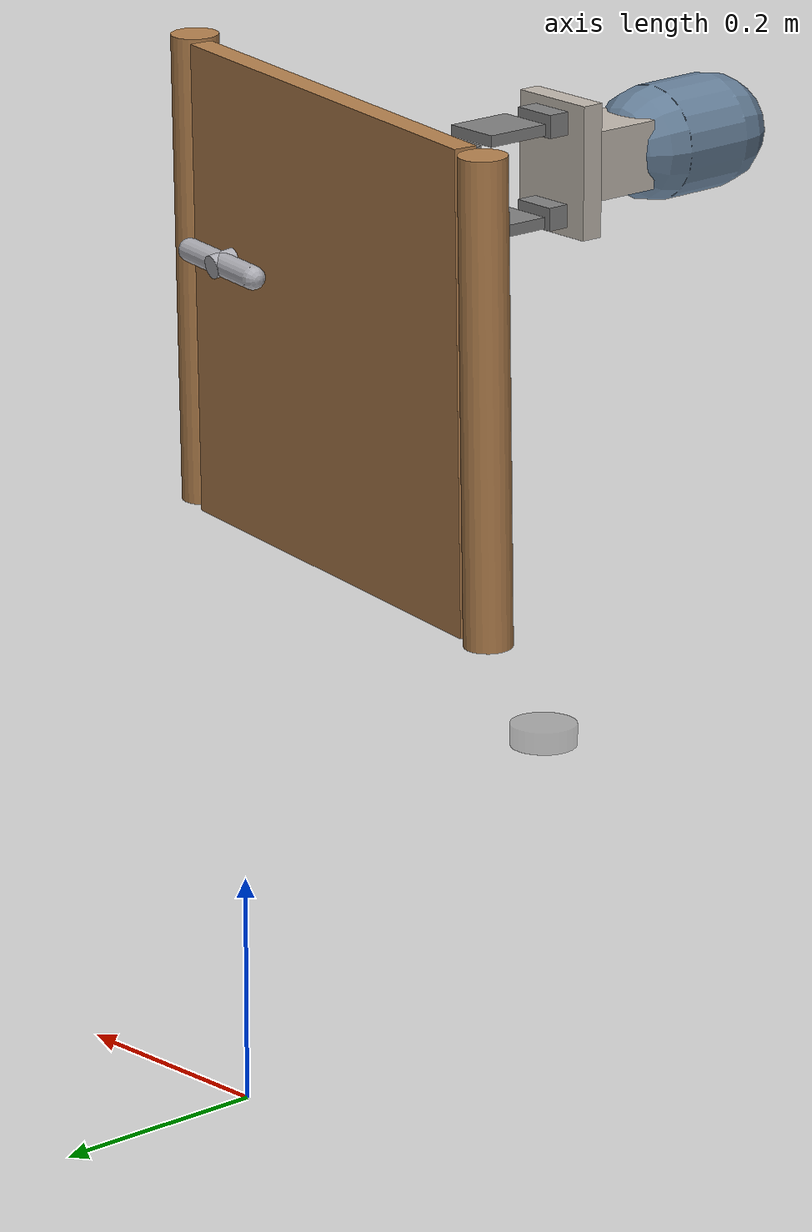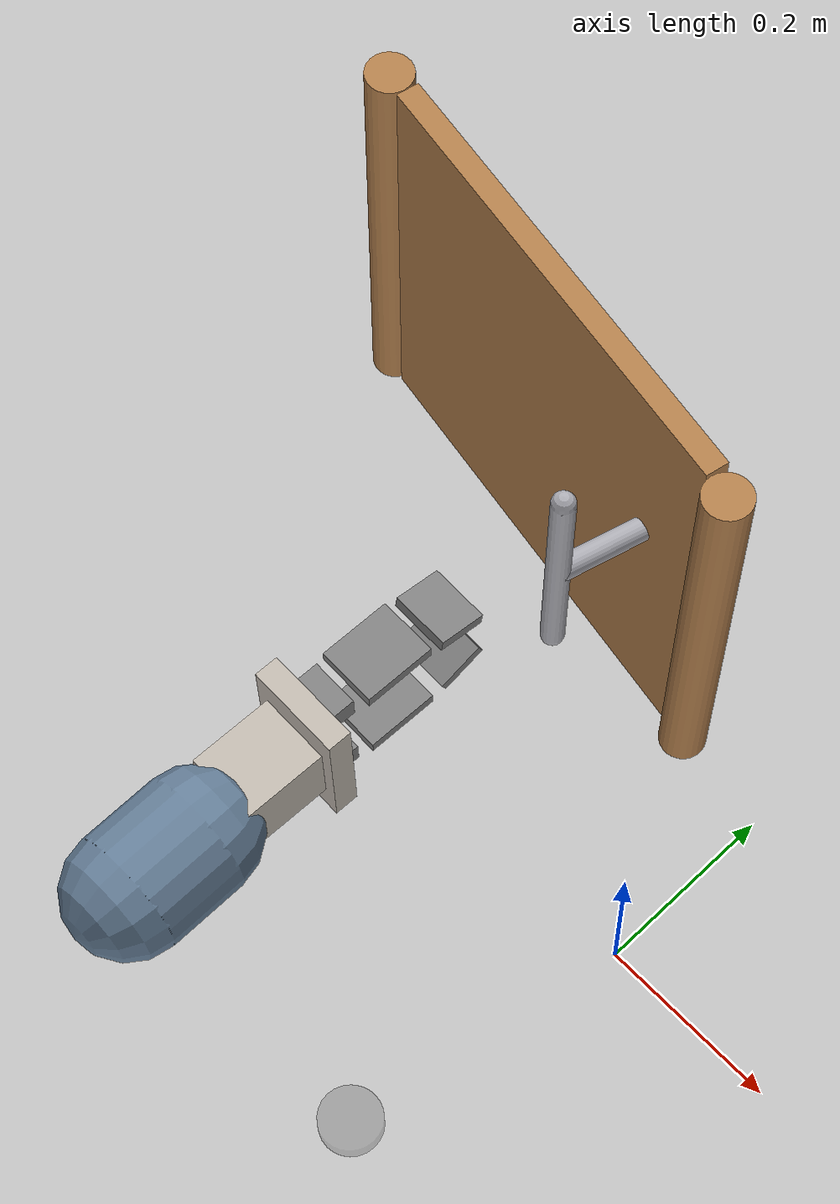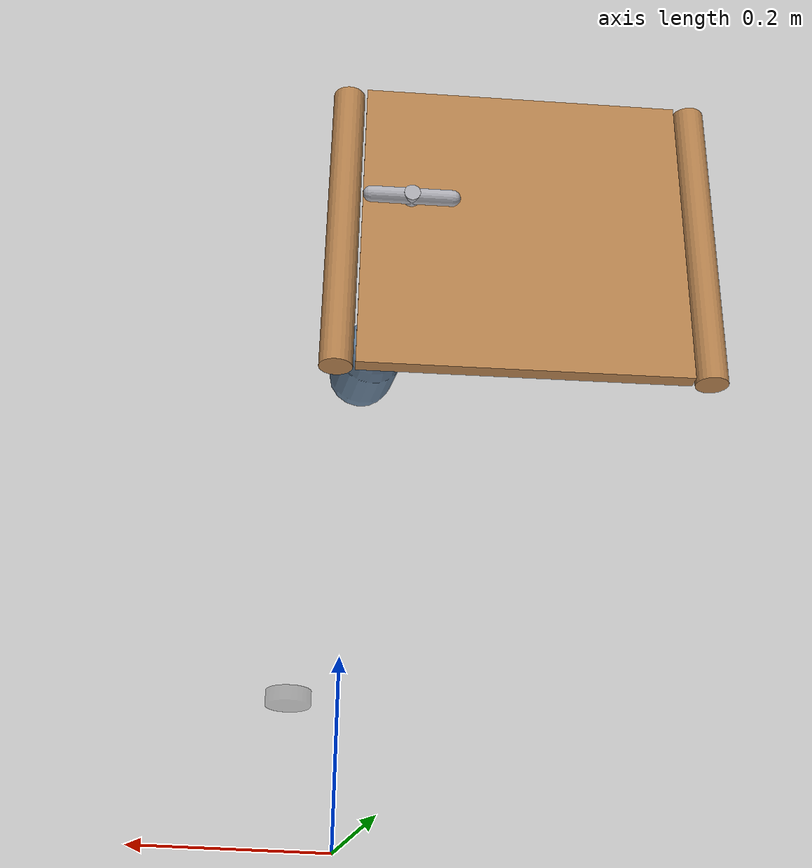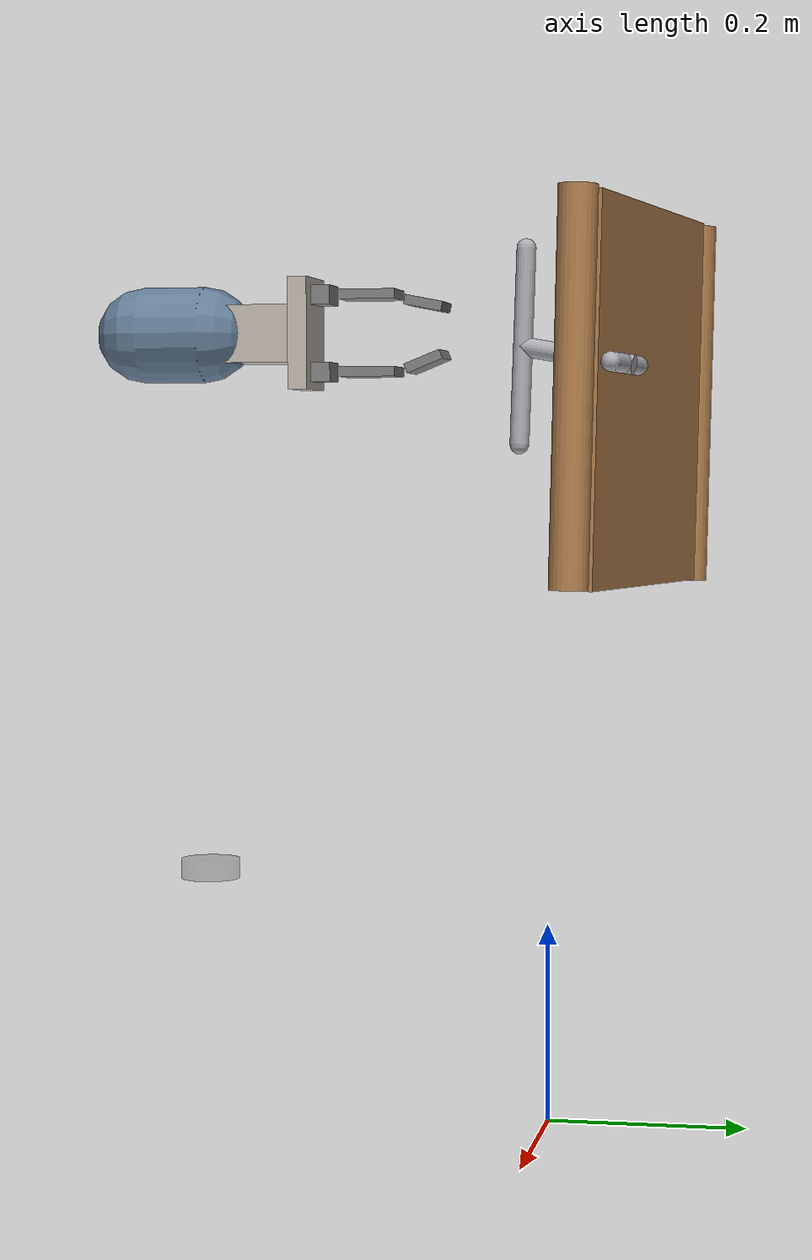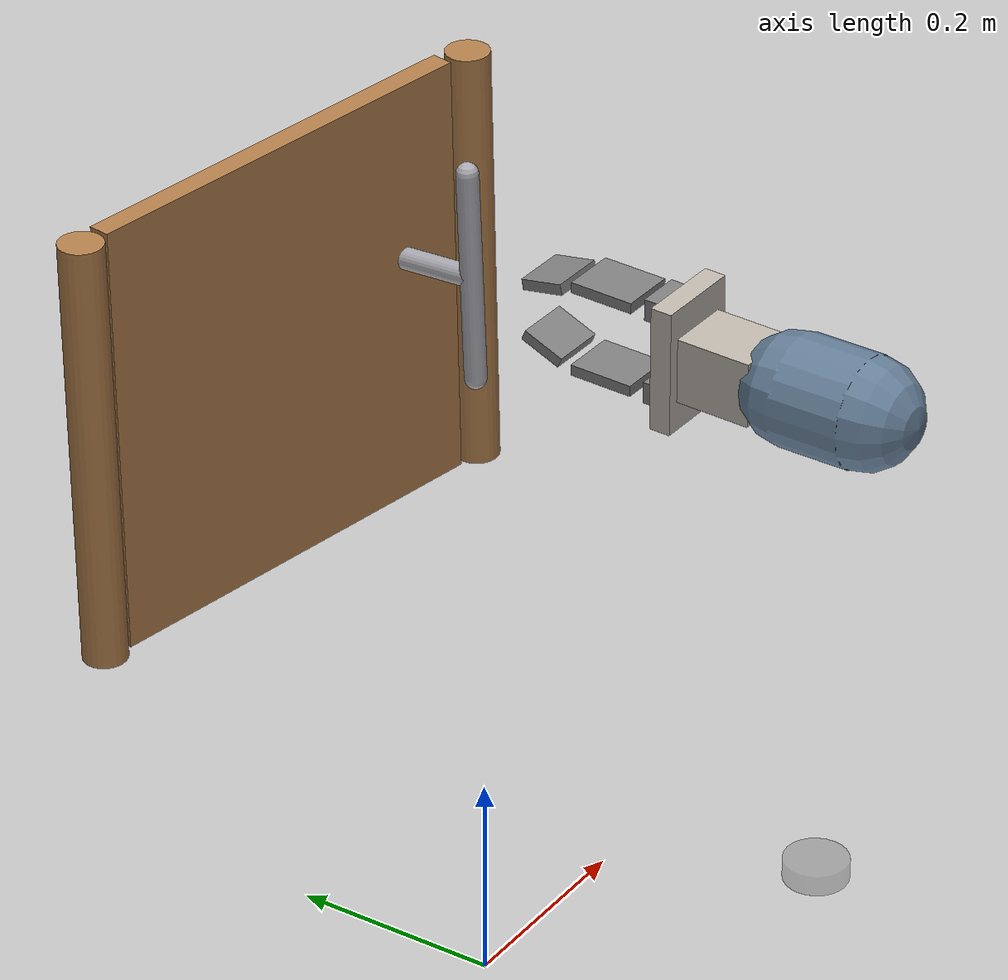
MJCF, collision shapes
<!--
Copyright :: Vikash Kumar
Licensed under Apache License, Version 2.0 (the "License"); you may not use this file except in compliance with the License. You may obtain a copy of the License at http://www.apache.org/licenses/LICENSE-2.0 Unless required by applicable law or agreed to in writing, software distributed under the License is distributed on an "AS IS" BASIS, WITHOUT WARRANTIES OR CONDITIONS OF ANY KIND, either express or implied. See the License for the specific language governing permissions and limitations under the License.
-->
<mujoco model='ADROIT-door(v1.5)'>

    <!-- ======= WORLD ======= -->
    <worldbody>
        <light directional='false' diffuse='.7 .7 .7' specular='0.03 0.03 0.03' pos='-1 -1.0 4.0' dir='1 1.0 -4'/>
        <camera name="fixed" pos="0.9 -0.7 0.7" quat="0.92388 0.382683 0 0" />
        <!-- Camera for the VIL paper -->
        <camera name="vil_camera" pos="0 -1.2 1.2" quat="0.92388 0.382683 0 0" />

        <!-- ======= MOCAP ======= -->
        <body name="vive_tracker" pos="0 -0.35 0.25" mocap="true">
            <inertial pos="0 0 0" mass="0.064" diaginertia="1.70667e-05 1.70667e-05 1.70667e-05" />
            <geom size="0.03 0.01" type="cylinder" contype="0" conaffinity="0" group="3" rgba="0.3 0.3 0.3 0.3" />
        </body>

        <!-- ======= HAND ======= -->
        <body name="forearm" pos="-0.1 -0.7 0.8" euler="-1.57 0 3.14">
            <inertial pos="0.001 -0.002 0.29" quat="0.982037 -0.0160006 0 -0.188007" mass="4" diaginertia="0.01 0.01 0.0075" />
            <joint name="ARTz" pos="0 0 0" axis="0 0 1" type="slide" range="-0.3 0.172" damping="20" />
            <joint name="ARRx" pos="0 0 0" axis="1 0 0" range="-0.5 0.3" damping="20" />
            <joint name="ARRy" pos="0 0 0" axis="0 1 0" range="-0.187 0.353" damping="20" />
            <joint name="ARRz" pos="0 0 0" axis="0 0 1" range="-1 2" damping="20" />
            <geom name="V_forearm" class="D_Vizual" pos="0 -.01 .181" euler="0 0 -1.57"  mesh="forearm_simple" />
            <geom name="C_forearm1" class="DC_Hand" size="0.05 0.033" pos="0 0 0.29" type="capsule" rgba="0.4 0.5 0.6 0.1" />

            <!-- ======= Adroit ======= -->
            <include file="openDoor_model.xml"/>
        </body>

        <!-- ======= Satellite ======= -->
        <body name="satelite" pos="0.2 0.97 -0.9" euler="2.33 4.6 3.14" >
            <inertial pos="-0.207339 0.1435293 0.547376" quat="0.982037 -0.0160006 0 -0.188007" mass="4" diaginertia="0.01 0.01 0.0075" />
            <geom name="Satellite" class="Satellite" pos="0 -.5 .2" euler="10 10 -11.57"  mesh="Satellite" size="0.05 0.25"/>

            <body name="frame" pos="-0.107339 0.0435293 0.447376" user="1001 0 2002 -0.4 -0.1 0.252 0 0.3 0.45" axisangle="0 0 1 -0.8">
            <inertial pos="0.29 0 0" quat="0.5 0.5 0.5 0.5" mass="7.85398" diaginertia="0.923301 0.764585 0.168533" />
            <geom size="0.02 0.2" pos="1.68 -0.88 0.22" type="cylinder" material="MatWood" euler="-0.1 4.63 0"/>
            <geom size="0.02 0.2" pos="1.72 -0.93 -0.22" type="cylinder" material="MatWood" euler="-0.1 4.63 0"/>
            <site name="S_handle_target" pos="0.75 -0.5 -.18" size="0.025" group='3'/>
            <body name="door" pos="1.7 -0.9 0" euler="-0.1 4.63 0">
                <body name="door_main" pos="0 0 0" euler="0 0 0">
                <inertial pos="0.0296816 -0.00152345 0" quat="0.701072 0 0 0.713091" mass="2.43455" diaginertia="0.0913751 0.0521615 0.043714" />
                <joint name="door_hinge" pos="0.31 0 0" axis="0 0 1" range="0 1.57" damping="1" frictionloss="2" />
                <geom size="0.2 0.01 0.2" type="box" friction="1 1 1" material="MatWood" />
                <body name="latch" pos="-0.24 0.05 -0.025" euler="0.15 0 0">
                    <inertial pos="-0.017762 0.0138544 0" quat="0.365653 0.605347 -0.36522 0.605365" mass="3.53743" diaginertia="0.0483771 0.0410001 0.0111013" />

                   <geom size="0.01 0.06" pos="0.1 -0.08 0" quat="0.707388 0.706825 0 0" type="cylinder" material="MatFoil" />
                    <geom size="0.01 0.1" pos="0.1 -0.14 0" quat="0.707388 10 0.706825 0" type="capsule" material="MatFoil" />
                    <geom size="0.01 0.05" pos="0.1 -0.03 0" quat="0.707388 0 0.706825 0" type="capsule" material="MatFoil" />

                    <site name="S_handle" pos="0.1 -0.15 0.05" size="0.025" group='3' rgba="0 0 0 0"/>
                </body>
            </body>
                </body>
        </body>

            <!-- ======= Adroit ======= -->
            <include file="../HST.xml"/>
        </body>

    </worldbody>

    <actuator>
        <general name="A_ARTz" joint="ARTz" ctrlrange="-0.3 0.5" biastype="affine" gainprm="500 0 0" biasprm="0 -200 0" />
        <general name="A_ARRx" joint="ARRx" ctrlrange="-.75 .75" biastype="affine" gainprm="500 0 0" biasprm="0 -200 0" />
        <general name="A_ARRy" joint="ARRy" ctrlrange="-.75 .75" biastype="affine" gainprm="500 0 0" biasprm="0 -200 0" />
        <general name="A_ARRz" joint="ARRz" ctrlrange="-1.0 2.0" biastype="affine" gainprm="500 0 0" biasprm="0 -200 0" />
    </actuator>
    <include file='openDoor_assets.xml'/>

</mujoco>

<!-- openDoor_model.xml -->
<mujocoinclude>
    <body name="wrist" pos="0 0 0.396">
        <geom name="V_wrist" class="D_Vizual" mesh="wrist" />
        <geom name="C_wrist" class="DC_Hand" size="0.015 0.01" quat="0.707107 0.707107 0 0" type="capsule" rgba="0.4 0.5 0.6 0.1" />
        <body name="palm" pos="0 0 0.034">
            <site name="S_grasp"  type="sphere" rgba="0 0 0 0" size="0.01" pos=".001 0 0.12" quat="0.0087 -0.6 -0.0034 -0.81  " />

            <body pos="0 0 0.01" euler="0 -1.6 0" name="robotic_hand">
                <!-- GRIPPER BASE-->
                <site name="sBase" pos="0.01 0 0" size="0.005 0 0" rgba="0 0 0 0"/>
                <geom class="base" size="0.058 0.04 0.01" pos="-0.01 0 0"/>
                <geom size="0.04 0.03 0.03" pos="-0.05 0 0" type="box" class="Silver"/>
                <!-- FINGERS RIGHT -->
                <body pos="0 0.74 0">
                    <body pos="0.01 -0.7 0">
                        <geom class="gripper_sticks_main" name="gripper_sticks_base_right" />
                        <body pos="0.05 0 0" >
                            <geom class="gripper_sticks_middle" name="gripper_sticks_middle_right"/>
                            <joint name="gripper_right" range="0 0.25" axis="0 0 -1"/>
                            <site name="s_gripper_right" pos="0 -0.08 0" size="0.005 0 0" rgba="0.5 0.5 0.5 0"/>
                            <body pos="0.06 -0.01 0" euler="0 0 0.2">
                                <geom class="gripper_sticks_end" name="gripper_sticks_end_right" quat="0.2 0 0 1" friction="-10"/>
                                <joint name="gripper_right_top" range="0 0.1" axis="0 0 -1"/>
                                <site name="s_gripper_right_top" pos="0.018 -0.01 0" size="0.005 0 0" rgba="0 0 0 0"/>
                            </body>
                        </body>
                    </body>
                </body>

                <!-- FINGER LEFT -->
                <body pos="0 0.66 0">
                    <body pos="0.01 -0.7 0">
                        <geom class="gripper_sticks_main" name="gripper_sticks_base_left"/>
                        <body pos="0.05 0 0" >
                            <geom class="gripper_sticks_middle" name="gripper_sticks_middle_left"/>
                            <joint name="gripper_left" range="0 0.25"/>
                            <site name="s_gripper_left" pos="0 0.08 0" size="0.005 0 0" rgba="0.5 0.5 0.5 0"/>
                            <body pos="0.06 0.01 0" euler="0 0 -0.2">
                                <geom class="gripper_sticks_end" name="gripper_sticks_end_left" quat="-0.3 0 0 1" friction="-10"/>
                                <joint name="gripper_left_top" range="0 0.1"/>
                                <site name="s_gripper_left_top" pos="0.018 0.013 0" size="0.005 0 0" rgba="0 0 0 0"/>
                            </body>
                        </body>
                    </body>
                </body>
            </body>
        </body>
    </body>
</mujocoinclude>

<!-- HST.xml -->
<mujocoinclude>
    <body name="Satellite" pos="0 0.7 0.396">
        <inertial pos="0.003 0 0.016" quat="0.504234 0.49623 0.49523 0.504234" mass="0.3" diaginertia="0.001 0.001 0.001" />

    </body>
</mujocoinclude>

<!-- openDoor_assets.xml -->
<mujocoinclude>
     <compiler angle="radian" meshdir='../resources/meshes/' texturedir='../resources/textures/' />
    <option apirate="200" iterations="20" noslip_iterations="20"/>
    <size njmax="500" nconmax="100" nstack="600000" nuser_body="9" nuser_jnt="1" nuser_site="1" nuser_tendon="1" nuser_actuator="16" nuser_sensor="1" />
    <visual>
        <global offwidth="3024" offheight="1680" />
        <quality shadowsize="4096" offsamples="8" />
        <map force="0.1" fogend="5" />
    </visual>
    <default class="main">
        <mesh scale="0.001 0.001 0.001" />
        <joint limited="true" margin="0.01" armature="0.001" damping="0.05" frictionloss="0.001" />
        <geom friction="1 0.5 0.01" margin="0.0005" />
        <site size="0.005 0 0" rgba="0.4 0.9 0.4 1" />
        <tendon limited="true" />
        <general ctrllimited="true" ctrlrange="-1 1" user="0 1 0.03 0.0939711 0.513477 0.0358776 1.23598 8.40409 0.485031 6.04244 1.02187 0.175297 0.121642 0 0 0" />
        <default class="D_Touch">
            <site size="0.009 0.004 0.013" group="4" type="box" rgba="0.8 0.8 0.8 0.15" />
            <general user="0 1 0.03 0.0939711 0.513477 0.0358776 1.23598 8.40409 0.485031 6.04244 1.02187 0.175297 0.121642 0 0 0" />
        </default>
        <default class="DC_Hand">
            <geom conaffinity="0" group="4" material="MatColl" />
            <general user="0 1 0.03 0.0939711 0.513477 0.0358776 1.23598 8.40409 0.485031 6.04244 1.02187 0.175297 0.121642 0 0 0" />
        </default>
        <default class="D_Vizual">
            <geom type="mesh" contype="0" conaffinity="0" group="1" material="MatViz" />
            <general user="0 1 0.03 0.0939711 0.513477 0.0358776 1.23598 8.40409 0.485031 6.04244 1.02187 0.175297 0.121642 0 0 0" />
        </default>
        <default class="Satellite">
            <geom type="mesh" contype="0" conaffinity="0" group="1" material="MatWood" />
            <general user="0 1 0.03 0.0939711 0.513477 0.0358776 1.23598 8.40409 0.485031 6.04244 1.02187 0.175297 0.121642 0 0 0" />
        </default>
    </default>
    <asset>
        <texture type="cube" name="texgeom" builtin="flat" mark="cross" rgb1="0.3 0.6 0.5" rgb2="0.3 0.6 0.5" width="127" height="762" />
        <texture type="cube" name="metal" file="metal.png" />
        <texture type="cube" name="dark_metal" file="dark_metal.png" />
        <texture type="2d" name="wood2d" file="metal.png" />
        <texture type="cube" name="square" file="square.png" />
        <texture type="cube" name="foil" file="silverRaw.png" />
        <texture type="cube" name="woodb" file="metal.png" />
        <texture type="2d" name="groundplane" builtin="checker" rgb1="0.2 0.3 0.4" rgb2="0.1 0.2 0.3" width="100" height="100" />
        <texture type="2d" name="marble2d" file="marble.png" />
        <texture type="cube" name="marblecube" file="marble.png" />
        <material name="MatColl" specular="1" shininess="0.3" reflectance="0.5" rgba="0.4 0.5 0.6 1" />
        <material name="MatViz" specular="0.75" shininess="0.1" reflectance="0.5" texture="dark_metal" />
        <material name="MatGnd" specular="0.3" shininess="0.3" reflectance="0.3" rgba="0.5 0.55 0.5 1" />
        <material name="object" texture="texgeom" />
        <material name="groundplane" texture="groundplane" texrepeat="10 10" />
        <material name="table2d" texture="marble2d" reflectance="0.3" rgba="0.8 0.8 0.8 1" />
        <material name="tablecube" texture="marblecube" rgba="0.8 0.8 0.8 1" />
        <material name="MatFoil" texture="foil" specular="1" shininess="0.3" rgba="0.9 0.9 0.9 1" />
        <material name="MatPlane" specular="0.3" shininess="0.3" rgba="0.3 0.3 0.2 1" />
        <material name="MatWood" texture="metal" texrepeat="3 3" specular="0.4" shininess="0.1" />
        <material name="MatSquare" texture="square" specular="1" shininess="0.6" rgba="0.8 0.8 0.8 1" />
        <material name="MatWoodR" texture="metal" specular="1" shininess="0.3" rgba="1 0.5 0.5 1" />
        <material name="MatWoodG" texture="metal" specular="1" shininess="0.3" rgba="0.2 1 0.2 1" />
        <material name="MatWoodB" texture="woodb" specular="1" shininess="0.3" />
        <mesh name="forearm_simple" file="forearm_simple.stl" scale="1 1 1"/>
        <mesh name="wrist" file="wrist.stl" />
        <mesh name="palm" file="palm.stl" />
        <mesh name="lfmetacarpal" file="lfmetacarpal.stl" />
        <mesh name="knuckle" file="knuckle.stl" />
        <mesh name="TH3_z" file="TH3_z.stl" />
        <mesh name="TH2_z" file="TH2_z.stl" />
        <mesh name="TH1_z" file="TH1_z.stl" />
        <mesh name="Satellite" file="HST2.stl" scale="0.3 0.3 0.3" />

        <material name="floor_mat" specular="0" shininess="0.5" reflectance="0" rgba="0.2 0.2 0.2 1"/>
        <material name="table_mat" specular="0" shininess="0.5" reflectance="0" rgba="0.93 0.93 0.93 1"/>
        <material name="block_mat" specular="0" shininess="0.5" reflectance="0" rgba="0.2 0.2 0.2 1"/>
        <material name="puck_mat" specular="0" shininess="0.5" reflectance="0" rgba="0.2 0.2 0.2 1"/>
        <material name="robot0:geomMat" shininess="0.03" specular="0.4"/>
        <material name="robot0:gripper_finger_mat" shininess="0.03" specular="0.4" reflectance="0"/>
        <material name="robot0:gripper_mat" shininess="0.03" specular="0.4" reflectance="0"/>
        <material name="robot0:arm_mat" shininess="0.03" specular="0.4" reflectance="0"/>
        <material name="robot0:head_mat" shininess="0.03" specular="0.4" reflectance="0"/>
        <material name="robot0:torso_mat" shininess="0.03" specular="0.4" reflectance="0"/>
        <material name="robot0:base_mat" shininess="0.03" specular="0.4" reflectance="0"/>

        <mesh file="base_link_collision.stl" name="robot0:base_link" scale="0.3 0.3 0.3"/>
        <mesh file="bellows_link_collision.stl" name="robot0:bellows_link" scale="0.3 0.3 0.3"/>
        <mesh file="elbow_flex_link_collision.stl" name="robot0:elbow_flex_link" scale="0.5 0.5 0.5"/>
        <mesh file="estop_link.stl" name="robot0:estop_link" scale="0.3 0.3 0.3"/>
        <mesh file="forearm_roll_link_collision.stl" name="robot0:forearm_roll_link" scale="0.5 0.5 0.5"/>
        <mesh file="gripper_link.stl" name="robot0:gripper_link" scale="1 0.3 0.5"/>
        <mesh file="head_pan_link_collision.stl" name="robot0:head_pan_link" scale="0.3 0.3 0.3"/>
        <mesh file="head_tilt_link_collision.stl" name="robot0:head_tilt_link" scale="0.3 0.3 0.3"/>
        <mesh file="l_wheel_link_collision.stl" name="robot0:l_wheel_link" scale="0.3 0.3 0.3"/>
        <mesh file="laser_link.stl" name="robot0:laser_link" scale="0.3 0.3 0.3"/>
        <mesh file="r_wheel_link_collision.stl" name="robot0:r_wheel_link" scale="0.3 0.3 0.3"/>
        <mesh file="torso_lift_link_collision.stl" name="robot0:torso_lift_link" scale="0.3 0.3 0.3"/>
        <mesh file="shoulder_pan_link_collision.stl" name="robot0:shoulder_pan_link" scale="0.5 0.5 0.5"/>
        <mesh file="shoulder_lift_link_collision.stl" name="robot0:shoulder_lift_link" scale="0.5 0.5 0.5"/>
        <mesh file="upperarm_roll_link_collision.stl" name="robot0:upperarm_roll_link" scale="0.5 0.5 0.5"/>
        <mesh file="wrist_flex_link_collision.stl" name="robot0:wrist_flex_link" scale="0.5 0.5 0.5" />
        <mesh file="wrist_roll_link_collision.stl" name="robot0:wrist_roll_link" scale="0.3 0.3 0.3"/>
        <mesh file="torso_fixed_link.stl" name="robot0:torso_fixed_link" scale="0.3 0.3 0.3"/>
    </asset>

   <actuator>
        <general name="A_gripper_right" joint="gripper_right" ctrlrange="0 0.1" biastype="affine" gainprm="10 0 0" biasprm="0 -10 0" user="1002 0 2001 -0.02 0.02 0 0 0 0 0 0 0 0 0 0 0" />
        <general name="A_gripper_right_top" joint="gripper_right_top" ctrlrange="0 0.4" biastype="affine" gainprm="10 0 0" biasprm="0 -10 0" user="1002 0 2001 -0.02 0.02 0 0 0 0 0 0 0 0 0 0 0" />
        <general name="A_gripper_left" joint="gripper_left" ctrlrange="0 0.5" biastype="affine" gainprm="10 0 0" biasprm="0 -10 0" user="1002 0 2001 -0.02 0.02 0 0 0 0 0 0 0 0 0 0 0" />
        <general name="A_gripper_left_top" joint="gripper_left_top" ctrlrange="0 0.02" biastype="affine" gainprm="10 0 0" biasprm="0 -10 0" user="1002 0 2001 -0.02 0.02 0 0 0 0 0 0 0 0 0 0 0" />

    </actuator>

<default class="robot0:fetch">

            <default class="robot0:grey">
                <geom rgba="0.356 0.361 0.376 1.0"></geom>
            </default>
            <default class="robot0:blue">
                <geom rgba="0.086 0.506 0.767 1.0"></geom>
            </default>
            <default class="robot0:white">
                <geom rgba="0.8 0.8 0.8 1"></geom>
            </default>

            <default class="Silver">
                <geom material="MatViz" />
            </default>

<!--            soft gripper-->
            <!-- CHANGE HERE-->
        <!-- All changes rearding joint dynamics, box sizes, etc. can be adjusted from here! Digging
        In XML is not advised/-->
        <default class="gripper_sticks_main">
            <geom type="box" size="0.01 0.01 0.02" mass="0.1" contype="1" conaffinity="1"/>
        </default>
        <default class="gripper_sticks_middle">
            <geom type="box" size="0.03 0.005 0.025" mass="0.2" contype="1" conaffinity="1"/>
        </default>
        <default class="gripper_sticks_end">
            <geom type="box" size="0.02 0.005 0.025" mass="0.1" contype="1" conaffinity="1"/>
        </default>

        <default class="base">
            <geom type="box" quat="0.7 0.7 0.7 0.7" material="MatViz"/>
        </default>
        </default>
 </mujocoinclude>
